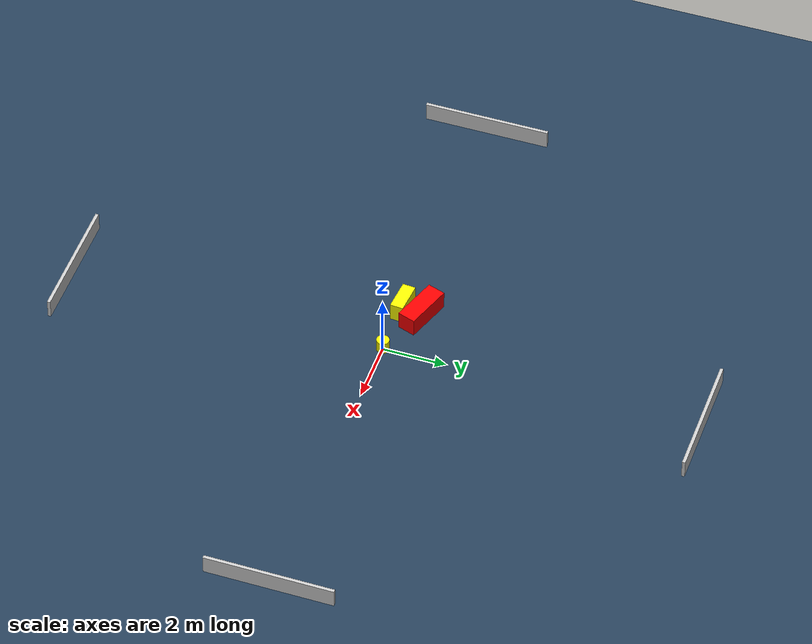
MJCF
<?xml version="1.0" ?>
<mujoco model="generated_environment">
  <option timestep="0.01" integrator="RK4" cone="elliptic"/>
  <default>
    <geom density="1"/>
  </default>
  <asset>
    <texture builtin="gradient" height="3072" name="skybox" rgb1="0.3 0.5 0.7" rgb2="0 0 0" type="skybox" width="512"/>
    <texture builtin="checker" height="300" name="groundplane" rgb1="0.2 0.3 0.4" rgb2="0.1 0.2 0.3" type="2d" width="300"/>
    <material name="groundplane" reflectance="0.2" texrepeat="5 5" texture="groundplane"/>
  </asset>
  <worldbody>
    <light dir="0 0 -1" directional="true" pos="0 0 1.5"/>
    <geom condim="3" friction="0.5 0.005 0.001" material="groundplane" name="floor" pos="0 0 0" size="0 0 0.05" type="plane"/>
    <body name="walls">
      <geom name="wall_1" condim="4" pos="-10.0 0.0 0.3" rgba="0.800000011920929 0.800000011920929 0.800000011920929 1.0" size="0.05 2.0 0.3" type="box"/>
      <geom name="wall_2" condim="4" pos="10.0 0.0 0.3" rgba="0.800000011920929 0.800000011920929 0.800000011920929 1.0" size="0.05 2.0 0.3" type="box"/>
      <geom name="wall_3" condim="4" pos="0.0 -10.0 0.3" rgba="0.800000011920929 0.800000011920929 0.800000011920929 1.0" size="2.0 0.05 0.3" type="box"/>
      <geom name="wall_4" condim="4" pos="0.0 10.0 0.3" rgba="0.800000011920929 0.800000011920929 0.800000011920929 1.0" size="2.0 0.05 0.3" type="box"/>
    </body>
    <body name="robot">
      <joint name="joint_x" type="slide" pos="0 0 0" axis="1 0 0"/>
      <joint name="joint_y" type="slide" pos="0 0 0" axis="0 1 0"/>
      <geom name="robot" type="cylinder" pos="0.0 0.0 0.2" size="0.2 0.2 0.0" mass="5.0" friction="1.0 0.005 0.0001" condim="4" rgba="1.0 1.0 0.0 1.0"/>
    </body>
    <body name="obstacle_1_movable">
      <geom name="obstacle_1_movable" condim="4" pos="-1.7386462256574966 0.03790508767492108 0.3" euler="0 0 265.3095207122875" friction="0.0 0.005 0.001" rgba="1.0 1.0 0.0 1.0" size="0.20558525210829068 0.48539091685262 0.3" type="box" mass="0.1"/>
      <joint type="free"/>
    </body>
    <body name="obstacle_2_static">
      <geom name="obstacle_2_static" condim="4" pos="-1.6496781948920216 0.6606850667314578 0.3" euler="0 0 251.37059348336913" friction="0.0 0.005 0.001" rgba="1.0 0.0 0.0 1.0" size="0.2879725595826764 0.7565873089235138 0.3" type="box"/>
    </body>
  </worldbody>
  <actuator>
    <motor name="actuator_x" joint="joint_x" gear="1" ctrlrange="-1 1"/>
    <motor name="actuator_y" joint="joint_y" gear="1" ctrlrange="-1 1"/>
  </actuator>
</mujoco>
